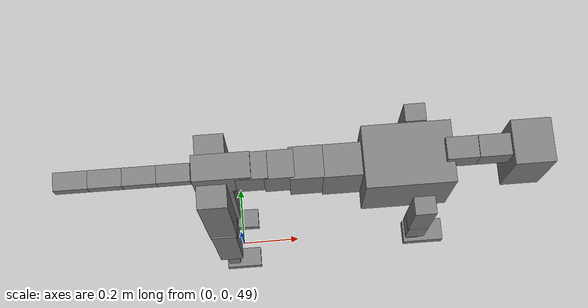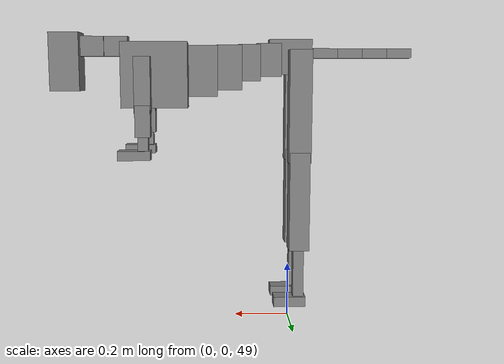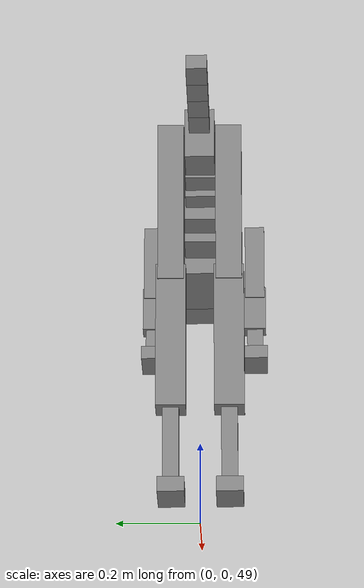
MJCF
<mujoco model="dog">

    <default>
        <joint armature="0.02" stiffness="1" damping="0.2" limited="true"/>
        <geom condim="3" friction="1 0.05 0.05" margin="0.01"/>
        <motor ctrllimited="true" ctrlrange="-1.0 1.0" forcelimited="true" gear="50"/>
    </default>

    <compiler inertiafromgeom="true" angle="radian"/>

    <option timestep="0.016" iterations="50" tolerance="1e-10" solver="Newton" jacobian="dense" cone="pyramidal"/>

    <size nconmax="20000" njmax="60000" nstack="5000000"/>
    <visual>
        <map force="0.1" zfar="30"/>
        <rgba haze="0.15 0.25 0.35 1"/>
        <quality shadowsize="2048"/>
        <global offwidth="800" offheight="800"/>
    </visual>

    <asset>
        <texture type="skybox" builtin="gradient" rgb1="0.3 0.5 0.7" rgb2="0 0 0" width="512" height="512"/>
        <texture name="texplane" type="2d" builtin="checker" rgb1=".2 .3 .4" rgb2=".1 0.15 0.2" width="512" height="512"
                 mark="cross" markrgb=".8 .8 .8"/>
        <texture name="texgeom" type="cube" builtin="flat" mark="cross" width="127" height="1278" rgb1="0.8 0.6 0.4"
                 rgb2="0.8 0.6 0.4" markrgb="1 1 1" random="0.01"/>

        <material name="matplane" reflectance="0.3" texture="texplane" texrepeat="1 1" texuniform="true"/>
        <material name="matgeom" texture="texgeom" texuniform="true" rgba="0.8 0.6 .4 1"/>
    </asset>

    <worldbody>
        <geom name="floor" pos="0 0 0" size="0 0 .25" type="plane" material="matplane" condim="3"/>

        <light directional="false" diffuse=".2 .2 .2" specular="0 0 0" pos="0 0 5" dir="0 0 -1" castshadow="false"/>
        <light mode="targetbodycom" target="torso" directional="false" diffuse=".8 .8 .8" specular="0.3 0.3 0.3"
               pos="0 0 4.0" dir="0 0 -1"/>

        <body name="root" pos="0 0 50">
            <freejoint name="root_1"/>
            <geom type="box" pos="0 0 -0.02" size="0.0774  0.0358  0.063" density="2030"/>

            <body name="spine1" pos="0.054 0 0">
                <joint name="spine1_y" axis="0 1 0" range="0 0.7" limited="true"/>
                <geom type="box" pos="0.02375 0 -0.03" size="0.04375  0.0375  0.05985" density="2030"/>

                <body name="spine2" pos="0.0612 0 0">
                    <joint name="spine2_y" axis="0 1 0" range="-0.15 0.15" limited="true"/>
                    <geom type="box" pos="0.03555  0  -0.04" size="0.04055  0.039  0.06615" density="2030"/>

                    <body name="spine3" pos="0.0730 0 0">
                        <joint name="spine3_y" axis="0 1 0" range="-0.15 0.15" limited="true"/>
                        <geom type="box" pos="0.03555  0  -0.057" size="0.04555  0.0445  0.081" density="2030"/>

                        <body name="spine4" pos="0.0780 0 0">
                            <joint name="spine4_y" axis="0 1 0" range="-0.15 0.15" limited="true"/>
                            <geom type="box" pos="0.05265  0  -0.07" size="0.05265  0.045  0.09135" density="2030"/>

                            <body name="torso" pos="0.1082 0 0">
                                <joint name="torso_y" axis="0 1 0" range="-0.15 0.15" limited="true"/>
                                <geom type="box" pos="0.11925  0  -0.085" size="0.11925  0.085  0.11745"
                                      density="2030"/>

                                <body name="neck1" pos="0.2160  0   0.0180">
                                    <joint name="neck1_y" axis="0 1 0" range="-1.2  -1" limited="true"/>
                                    <geom type="box" pos="0.0423  0  0" size="0.0423  0.03  0.036" density="2325"/>

                                    <body name="neck2" pos="0.0853  0  0">
                                        <joint name="neck2_y" axis="0 1 0" range="0.1  0" limited="true"/>
                                        <geom type="box" pos="0.0423  0  0" size="0.0423  0.03  0.036" density="2325"/>

                                        <body name="head" pos="0.0853  0  0">
                                            <joint name="head_y" axis="0 1 0" range="-0.3  -0.2" limited="true"/>
                                            <geom type="box" pos="0.0531  0  -0.055" size="0.0531  0.06  0.1044"
                                                  density="4030"/>

                                        </body>
                                    </body>
                                </body>

                                <body name="front_shoulder" pos="0.156  0   -0.0480">
                                    <joint name="front_shoulder_y" axis="0 1 0" range="-1 1.5" limited="true"/>
                                    <geom type="box" pos="0 0.13 -0.0711" size="0.0289  0.0247  0.0978" density="1158"/>
                                    <geom type="box" pos="0 -0.13 -0.0711" size="0.0289  0.0247  0.0978"
                                          density="1158"/>

                                    <body name="front_elbow" pos="0  0  -0.1422">
                                        <joint name="front_elbow_y" axis="0 1 0" range="-2 0" limited="true"/>
                                        <geom type="box" pos="0 0.13 -0.0557" size="0.0269  0.0275  0.0557"
                                              density="1081"/>
                                        <geom type="box" pos="0 -0.13 -0.0557" size="0.0269  0.0275  0.0557"
                                              density="1081"/>

                                        <body name="front_wrist" pos="0  0  -0.1115">
                                            <joint name="front_wrist_y" axis="0 1 0" range="-0.2 0" limited="true"/>
                                            <geom type="box" pos="0 0.13 -0.0311" size="0.0180  0.0200  0.0442"
                                                  density="1664"/>
                                            <geom type="box" pos="0 -0.13 -0.0311" size="0.0180  0.0200  0.0442"
                                                  density="1664"/>

                                            <body name="front_finger_end" pos="0  0  -0.0621">
                                                <joint name="front_finger_y" axis="0 1 0" range="-0.4 1"
                                                       limited="true"/>
                                                <geom type="box" pos="0.0314  0.13  -0.0016"
                                                      size="0.0576  0.0314  0.0166" density="1515"/>
                                                <geom type="box" pos="0.0314  -0.13  -0.0016"
                                                      size="0.0576  0.0314  0.0166" density="1515"/>

                                            </body>

                                        </body>
                                    </body>
                                </body>

                            </body>
                        </body>
                    </body>
                </body>
            </body>

            <body name="back_hip" pos="-0.03 0 -0.018">
                <joint name="back_hip_y" axis="0 1 0" range="-1.5 0.3" limited="true"/>
                <geom type="box" pos="0 0.07 -0.1803" size="0.0404  0.0317  0.2031" density="1154"/>
                <geom type="box" pos="0 -0.07 -0.1803" size="0.0404  0.0317  0.2031" density="1154"/>

                <body name="back_knee" pos="0  0  -0.3605">
                    <joint name="back_knee_y" axis="0 1 0" range="0 2.8" limited="true"/>
                    <geom type="box" pos="0 0.07 -0.1656" size="0.0368  0.0362  0.1811" density="1227"/>
                    <geom type="box" pos="0 -0.07 -0.1656" size="0.0368  0.0362  0.1811" density="1227"/>

                    <body name="back_ankle" pos="0  0  -0.3311">
                        <joint name="back_ankle_y" axis="0 1 0" range="-2.2 0" limited="true"/>
                        <geom type="box" pos="0 0.07 -0.1036" size="0.0195  0.0195  0.1149" density="1284"/>
                        <geom type="box" pos="0 -0.07 -0.1036" size="0.0195  0.0195  0.1149" density="1284"/>

                        <body name="back_toe_end" pos="0  0  -0.2072">
                            <joint name="back_toe_y" axis="0 1 0" range="-0.4 1" limited="true"/>
                            <geom type="box" pos="0.0322  0.07  -0.0033" size="0.0590  0.0322  0.0183" density="1515"/>
                            <geom type="box" pos="0.0322  -0.07  -0.0033" size="0.0590  0.0322  0.0183" density="1515"/>

                        </body>
                    </body>
                </body>
            </body>

            <body name="tail1" pos="-0.074 0 -0.006">
                <joint name="tail1_y" axis="0 1 0" range="-0.2 0.2" limited="true"/>
                <geom type="box" pos="-0.0536  0  0" size="0.045  0.025  0.0175" density="1587"/>

                <body name="tail2" pos="-0.09 0 0">
                    <joint name="tail2_y" axis="0 1 0" range="-0.2 0.2" limited="true"/>
                    <geom type="box" pos="-0.0536  0  0" size="0.045  0.025  0.0175" density="1587"/>

                    <body name="tail3" pos="-0.09 0 0">
                        <joint name="tail3_y" axis="0 1 0" range="-0.2 0.2" limited="true"/>
                        <geom type="box" pos="-0.0536  0  0" size="0.045  0.025  0.0175" density="1587"/>

                        <body name="tail4" pos="-0.09 0 0">
                            <joint name="tail4_y" axis="0 1 0" range="-0.2 0.2" limited="true"/>
                            <geom type="box" pos="-0.0536  0  0" size="0.045  0.025  0.0175" density="1587"/>

                        </body>
                    </body>
                </body>
            </body>
        </body>
    </worldbody>

    <actuator>
        <motor joint="spine1_y" forcerange="-150 150     "/>
        <motor joint="spine2_y" forcerange="-150 150     "/>
        <motor joint="spine3_y" forcerange="-150 150     "/>
        <motor joint="spine4_y" forcerange="-150 150     "/>
        <motor joint="torso_y" forcerange="-150 150     "/>
        <motor joint="neck1_y" forcerange="-100 100       "/>
        <motor joint="neck2_y" forcerange="-100 100       "/>
        <motor joint="head_y" forcerange="-150 150       "/>
        <motor joint="front_shoulder_y" forcerange="-149.62 115.18"/>
        <motor joint="front_elbow_y" forcerange="-156.10 143.63"/>
        <motor joint="front_wrist_y" forcerange="-103.94 55.67"/>
        <motor joint="front_finger_y" forcerange="-90.15 37.45"/>
        <motor joint="back_hip_y" forcerange="-346.71 275.54"/>
        <motor joint="back_knee_y" forcerange="-352.59 374.61"/>
        <motor joint="back_angle_y" forcerange="-161.24 50.67"/>
        <motor joint="back_toe_y" forcerange="-62.37 115.21"/>
        <motor joint="tail1_y" forcerange="-50 50     "/>
        <motor joint="tail2_y" forcerange="-50 50     "/>
        <motor joint="tail3_y" forcerange="-50 50     "/>
        <motor joint="tail4_y" forcerange="-50 50     "/>
    </actuator>
</mujoco>
